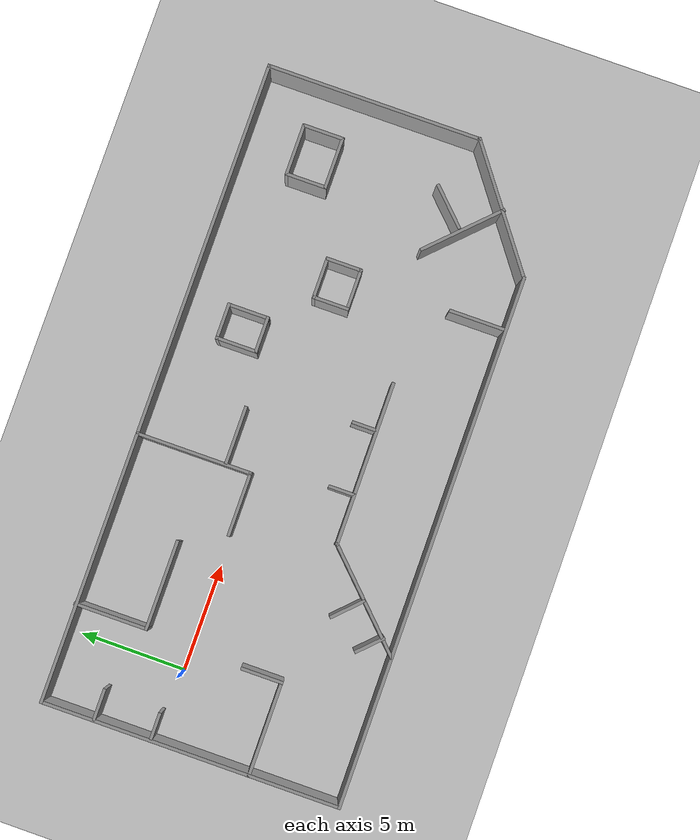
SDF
<sdf version="1.7">
 <world name="default">
  <model name="ground_plane">
   <static>1</static>
   <link name="link">
    <collision name="collision">
     <geometry><plane><normal>0 0 1</normal><size>100 100</size></plane></geometry>
     <surface>
      <contact><collide_bitmask>65535</collide_bitmask></contact>
      <friction><ode><mu>100</mu><mu2>50</mu2></ode></friction>
     </surface>
    </collision>
    <visual name="visual">
     <cast_shadows>0</cast_shadows>
     <geometry><plane><normal>0 0 1</normal><size>100 100</size></plane></geometry>
     <material>
      <script><uri>file://media/materials/scripts/gazebo.material</uri><name>Gazebo/Grey</name></script>
     </material>
    </visual>
   </link>
  </model>
  <light name="sun" type="directional">
   <pose>0 0 10 0 -0 0</pose>
   <diffuse>0.8 0.8 0.8 1</diffuse>
   <specular>0.2 0.2 0.2 1</specular>
   <attenuation>
    <range>1000</range>
    <constant>0.9</constant>
    <linear>0.01</linear>
    <quadratic>0.001</quadratic>
   </attenuation>
   <direction>-0.5 0.1 -0.9</direction>
   <spot><inner_angle>0</inner_angle><outer_angle>0</outer_angle><falloff>0</falloff></spot>
  </light>
  <spherical_coordinates>
   <surface_model>EARTH_WGS84</surface_model>
   <latitude_deg>47.3667</latitude_deg>
   <longitude_deg>8.55</longitude_deg>
   <elevation>500</elevation>
   <heading_deg>0</heading_deg>
  </spherical_coordinates>
  <physics type="ode">
   <ode>
    <solver>
     <type>quick</type>
     <iters>500</iters>
     <sor>1.3</sor>
     <use_dynamic_moi_rescaling>0</use_dynamic_moi_rescaling>
    </solver>
    <constraints>
     <cfm>0</cfm>
     <erp>0.2</erp>
     <contact_max_correcting_vel>100</contact_max_correcting_vel>
     <contact_surface_layer>0.001</contact_surface_layer>
    </constraints>
   </ode>
   <max_step_size>0.001</max_step_size>
   <real_time_factor>1</real_time_factor>
   <real_time_update_rate>1000</real_time_update_rate>
  </physics>
  <gravity>0 0 -9.8</gravity>
  <magnetic_field>6e-06 2.3e-05 -4.2e-05</magnetic_field>
  <atmosphere type="adiabatic"/>
  <scene><ambient>0.4 0.4 0.4 1</ambient><background>0.7 0.7 0.7 1</background><shadows>1</shadows></scene>
  <model name="environment2">
   <pose>11.9528 -1.57746 0 0 -0 0</pose>
   <link name="Wall_1">
    <collision name="Wall_1_Collision">
     <geometry><box><size>30.5 0.15 2.5</size></box></geometry>
     <pose>0 0 1.25 0 -0 0</pose>
    </collision>
    <visual name="Wall_1_Visual">
     <pose>0 0 1.25 0 -0 0</pose>
     <geometry><box><size>30.5 0.15 2.5</size></box></geometry>
     <material>
      <script><uri>file://media/materials/scripts/gazebo.material</uri><name>Gazebo/Grey</name></script>
      <ambient>1 1 1 1</ambient>
     </material>
     <meta><layer>0</layer></meta>
    </visual>
    <pose>-0.014934 7.01964 0 0 -0 0</pose>
   </link>
   <link name="Wall_10">
    <collision name="Wall_10_Collision">
     <geometry><box><size>14.1751 0.15 2.5</size></box></geometry>
     <pose>0 0 1.25 0 -0 0</pose>
    </collision>
    <visual name="Wall_10_Visual">
     <pose>0 0 1.25 0 -0 0</pose>
     <geometry><box><size>14.1751 0.15 2.5</size></box></geometry>
     <material>
      <script><uri>file://media/materials/scripts/gazebo.material</uri><name>Gazebo/Grey</name></script>
      <ambient>1 1 1 1</ambient>
     </material>
     <meta><layer>0</layer></meta>
    </visual>
    <pose>-15.1867 0.007115 0 0 -0 -1.57033</pose>
   </link>
   <link name="Wall_13">
    <collision name="Wall_13_Collision">
     <geometry><box><size>3.5 0.15 2.5</size></box></geometry>
     <pose>0 0 1.25 0 -0 0</pose>
    </collision>
    <visual name="Wall_13_Visual">
     <pose>0 0 1.25 0 -0 0</pose>
     <geometry><box><size>3.5 0.15 2.5</size></box></geometry>
     <material>
      <script><uri>file://media/materials/scripts/gazebo.material</uri><name>Gazebo/Grey</name></script>
      <ambient>1 1 1 1</ambient>
     </material>
     <meta><layer>0</layer></meta>
    </visual>
    <pose>-10.5995 5.38344 0 0 -0 -1.5708</pose>
   </link>
   <link name="Wall_14">
    <collision name="Wall_14_Collision">
     <geometry><box><size>4.25 0.15 2.5</size></box></geometry>
     <pose>0 0 1.25 0 -0 0</pose>
    </collision>
    <visual name="Wall_14_Visual">
     <pose>0 0 1.25 0 -0 0</pose>
     <geometry><box><size>4.25 0.15 2.5</size></box></geometry>
     <material>
      <script><uri>file://media/materials/scripts/gazebo.material</uri><name>Gazebo/Grey</name></script>
      <ambient>1 1 1 1</ambient>
     </material>
     <meta><layer>0</layer></meta>
    </visual>
    <pose>-8.5495 3.70844 0 0 -0 0</pose>
   </link>
   <link name="Wall_16">
    <collision name="Wall_16_Collision">
     <geometry><box><size>5.5 0.15 2.5</size></box></geometry>
     <pose>0 0 1.25 0 -0 0</pose>
    </collision>
    <visual name="Wall_16_Visual">
     <pose>0 0 1.25 0 -0 0</pose>
     <geometry><box><size>5.5 0.15 2.5</size></box></geometry>
     <material>
      <script><uri>file://media/materials/scripts/gazebo.material</uri><name>Gazebo/Grey</name></script>
      <ambient>1 1 1 1</ambient>
     </material>
     <meta><layer>0</layer></meta>
    </visual>
    <pose>-2.52368 4.32226 0 0 -0 -1.5708</pose>
   </link>
   <link name="Wall_17">
    <collision name="Wall_17_Collision">
     <geometry><box><size>3.06118 0.15 2.5</size></box></geometry>
     <pose>0 0 1.25 0 -0 0</pose>
    </collision>
    <visual name="Wall_17_Visual">
     <pose>0 0 1.25 0 -0 0</pose>
     <geometry><box><size>3.06118 0.15 2.5</size></box></geometry>
     <material>
      <script><uri>file://media/materials/scripts/gazebo.material</uri><name>Gazebo/Grey</name></script>
      <ambient>1 1 1 1</ambient>
     </material>
     <meta><layer>0</layer></meta>
    </visual>
    <pose>-3.97927 1.64726 0 0 -0 3.14159</pose>
   </link>
   <link name="Wall_2">
    <collision name="Wall_2_Collision">
     <geometry><box><size>10.25 0.15 2.5</size></box></geometry>
     <pose>0 0 1.25 0 -0 0</pose>
    </collision>
    <visual name="Wall_2_Visual">
     <pose>0 0 1.25 0 -0 0</pose>
     <geometry><box><size>10.25 0.15 2.5</size></box></geometry>
     <material>
      <script><uri>file://media/materials/scripts/gazebo.material</uri><name>Gazebo/Grey</name></script>
      <ambient>1 1 1 1</ambient>
     </material>
     <meta><layer>0</layer></meta>
    </visual>
    <pose>15.1601 1.96964 0 0 -0 -1.5708</pose>
   </link>
   <link name="Wall_20">
    <collision name="Wall_20_Collision">
     <geometry><box><size>4.5 0.15 2.5</size></box></geometry>
     <pose>0 0 1.25 0 -0 0</pose>
    </collision>
    <visual name="Wall_20_Visual">
     <pose>0 0 1.25 0 -0 0</pose>
     <geometry><box><size>4.5 0.15 2.5</size></box></geometry>
     <material>
      <script><uri>file://media/materials/scripts/gazebo.material</uri><name>Gazebo/Grey</name></script>
      <ambient>1 1 1 1</ambient>
     </material>
     <meta><layer>0</layer></meta>
    </visual>
    <pose>-13.013 -2.76102 0 0 -0 0</pose>
   </link>
   <link name="Wall_21">
    <collision name="Wall_21_Collision">
     <geometry><box><size>2 0.15 2.5</size></box></geometry>
     <pose>0 0 1.25 0 -0 0</pose>
    </collision>
    <visual name="Wall_21_Visual">
     <pose>0 0 1.25 0 -0 0</pose>
     <geometry><box><size>2 0.15 2.5</size></box></geometry>
     <material>
      <script><uri>file://media/materials/scripts/gazebo.material</uri><name>Gazebo/Grey</name></script>
      <ambient>1 1 1 1</ambient>
     </material>
     <meta><layer>0</layer></meta>
    </visual>
    <pose>-10.838 -1.83602 0 0 -0 1.5708</pose>
   </link>
   <link name="Wall_23">
    <collision name="Wall_23_Collision">
     <geometry><box><size>5.75 0.15 2.5</size></box></geometry>
     <pose>0 0 1.25 0 -0 0</pose>
    </collision>
    <visual name="Wall_23_Visual">
     <pose>0 0 1.25 0 -0 0</pose>
     <geometry><box><size>5.75 0.15 2.5</size></box></geometry>
     <material>
      <script><uri>file://media/materials/scripts/gazebo.material</uri><name>Gazebo/Grey</name></script>
      <ambient>1 1 1 1</ambient>
     </material>
     <meta><layer>0</layer></meta>
    </visual>
    <pose>-6.20298 -5.03317 0 0 -0 0.785398</pose>
   </link>
   <link name="Wall_25">
    <collision name="Wall_25_Collision">
     <geometry><box><size>7.75 0.15 2.5</size></box></geometry>
     <pose>0 0 1.25 0 -0 0</pose>
    </collision>
    <visual name="Wall_25_Visual">
     <pose>0 0 1.25 0 -0 0</pose>
     <geometry><box><size>7.75 0.15 2.5</size></box></geometry>
     <material>
      <script><uri>file://media/materials/scripts/gazebo.material</uri><name>Gazebo/Grey</name></script>
      <ambient>1 1 1 1</ambient>
     </material>
     <meta><layer>0</layer></meta>
    </visual>
    <pose>-0.423078 -3.05327 0 0 -0 0</pose>
   </link>
   <link name="Wall_27">
    <collision name="Wall_27_Collision">
     <geometry><box><size>2 0.15 2.5</size></box></geometry>
     <pose>0 0 1.25 0 -0 0</pose>
    </collision>
    <visual name="Wall_27_Visual">
     <pose>0 0 1.25 0 -0 0</pose>
     <geometry><box><size>2 0.15 2.5</size></box></geometry>
     <material>
      <script><uri>file://media/materials/scripts/gazebo.material</uri><name>Gazebo/Grey</name></script>
      <ambient>1 1 1 1</ambient>
     </material>
     <meta><layer>0</layer></meta>
    </visual>
    <pose>2.70725 4.17567 0 0 -0 -1.5708</pose>
   </link>
   <link name="Wall_28">
    <collision name="Wall_28_Collision">
     <geometry><box><size>1.75 0.15 2.5</size></box></geometry>
     <pose>0 0 1.25 0 -0 0</pose>
    </collision>
    <visual name="Wall_28_Visual">
     <pose>0 0 1.25 0 -0 0</pose>
     <geometry><box><size>1.75 0.15 2.5</size></box></geometry>
     <material>
      <script><uri>file://media/materials/scripts/gazebo.material</uri><name>Gazebo/Grey</name></script>
      <ambient>1 1 1 1</ambient>
     </material>
     <meta><layer>0</layer></meta>
    </visual>
    <pose>3.50725 3.25067 0 0 -0 0</pose>
   </link>
   <link name="Wall_29">
    <collision name="Wall_29_Collision">
     <geometry><box><size>2 0.15 2.5</size></box></geometry>
     <pose>0 0 1.25 0 -0 0</pose>
    </collision>
    <visual name="Wall_29_Visual">
     <pose>0 0 1.25 0 -0 0</pose>
     <geometry><box><size>2 0.15 2.5</size></box></geometry>
     <material>
      <script><uri>file://media/materials/scripts/gazebo.material</uri><name>Gazebo/Grey</name></script>
      <ambient>1 1 1 1</ambient>
     </material>
     <meta><layer>0</layer></meta>
    </visual>
    <pose>4.30724 4.17567 0 0 -0 1.5708</pose>
   </link>
   <link name="Wall_3">
    <collision name="Wall_3_Collision">
     <geometry><box><size>6.78786 0.15 2.5</size></box></geometry>
     <pose>0 0 1.25 0 -0 0</pose>
    </collision>
    <visual name="Wall_3_Visual">
     <pose>0 0 1.25 0 -0 0</pose>
     <geometry><box><size>6.78786 0.15 2.5</size></box></geometry>
     <material>
      <script><uri>file://media/materials/scripts/gazebo.material</uri><name>Gazebo/Grey</name></script>
      <ambient>1 1 1 1</ambient>
     </material>
     <meta><layer>0</layer></meta>
    </visual>
    <pose>12.4921 -5.05445 0 0 -0 -2.50458</pose>
   </link>
   <link name="Wall_30">
    <collision name="Wall_30_Collision">
     <geometry><box><size>1.75 0.15 2.5</size></box></geometry>
     <pose>0 0 1.25 0 -0 0</pose>
    </collision>
    <visual name="Wall_30_Visual">
     <pose>0 0 1.25 0 -0 0</pose>
     <geometry><box><size>1.75 0.15 2.5</size></box></geometry>
     <material>
      <script><uri>file://media/materials/scripts/gazebo.material</uri><name>Gazebo/Grey</name></script>
      <ambient>1 1 1 1</ambient>
     </material>
     <meta><layer>0</layer></meta>
    </visual>
    <pose>3.50725 5.10067 0 0 -0 3.14159</pose>
   </link>
   <link name="Wall_32">
    <collision name="Wall_32_Collision">
     <geometry><box><size>1.75 0.15 2.5</size></box></geometry>
     <pose>0 0 1.25 0 -0 0</pose>
    </collision>
    <visual name="Wall_32_Visual">
     <pose>0 0 1.25 0 -0 0</pose>
     <geometry><box><size>1.75 0.15 2.5</size></box></geometry>
     <material>
      <script><uri>file://media/materials/scripts/gazebo.material</uri><name>Gazebo/Grey</name></script>
      <ambient>1 1 1 1</ambient>
     </material>
     <meta><layer>0</layer></meta>
    </visual>
    <pose>5.88863 0.813381 0 0 -0 -1.5708</pose>
   </link>
   <link name="Wall_33">
    <collision name="Wall_33_Collision">
     <geometry><box><size>2 0.15 2.5</size></box></geometry>
     <pose>0 0 1.25 0 -0 0</pose>
    </collision>
    <visual name="Wall_33_Visual">
     <pose>0 0 1.25 0 -0 0</pose>
     <geometry><box><size>2 0.15 2.5</size></box></geometry>
     <material>
      <script><uri>file://media/materials/scripts/gazebo.material</uri><name>Gazebo/Grey</name></script>
      <ambient>1 1 1 1</ambient>
     </material>
     <meta><layer>0</layer></meta>
    </visual>
    <pose>6.81363 0.013381 0 0 -0 0</pose>
   </link>
   <link name="Wall_34">
    <collision name="Wall_34_Collision">
     <geometry><box><size>1.75 0.15 2.5</size></box></geometry>
     <pose>0 0 1.25 0 -0 0</pose>
    </collision>
    <visual name="Wall_34_Visual">
     <pose>0 0 1.25 0 -0 0</pose>
     <geometry><box><size>1.75 0.15 2.5</size></box></geometry>
     <material>
      <script><uri>file://media/materials/scripts/gazebo.material</uri><name>Gazebo/Grey</name></script>
      <ambient>1 1 1 1</ambient>
     </material>
     <meta><layer>0</layer></meta>
    </visual>
    <pose>7.73863 0.813381 0 0 -0 1.5708</pose>
   </link>
   <link name="Wall_35">
    <collision name="Wall_35_Collision">
     <geometry><box><size>2 0.15 2.5</size></box></geometry>
     <pose>0 0 1.25 0 -0 0</pose>
    </collision>
    <visual name="Wall_35_Visual">
     <pose>0 0 1.25 0 -0 0</pose>
     <geometry><box><size>2 0.15 2.5</size></box></geometry>
     <material>
      <script><uri>file://media/materials/scripts/gazebo.material</uri><name>Gazebo/Grey</name></script>
      <ambient>1 1 1 1</ambient>
     </material>
     <meta><layer>0</layer></meta>
    </visual>
    <pose>6.81363 1.61338 0 0 -0 3.14159</pose>
   </link>
   <link name="Wall_4">
    <collision name="Wall_4_Collision">
     <geometry><box><size>25.1806 0.15 2.5</size></box></geometry>
     <pose>0 0 1.25 0 -0 0</pose>
    </collision>
    <visual name="Wall_4_Visual">
     <pose>0 0 1.25 0 -0 0</pose>
     <geometry><box><size>25.1806 0.15 2.5</size></box></geometry>
     <material>
      <script><uri>file://media/materials/scripts/gazebo.material</uri><name>Gazebo/Grey</name></script>
      <ambient>1 1 1 1</ambient>
     </material>
     <meta><layer>0</layer></meta>
    </visual>
    <pose>-2.66812 -7.01698 0 0 -0 3.14067</pose>
   </link>
   <link name="Wall_59">
    <collision name="Wall_59_Collision">
     <geometry><box><size>2 0.15 2.5</size></box></geometry>
     <pose>0 0 1.25 0 -0 0</pose>
    </collision>
    <visual name="Wall_59_Visual">
     <pose>0 0 1.25 0 -0 0</pose>
     <geometry><box><size>2 0.15 2.5</size></box></geometry>
     <material>
      <script><uri>file://media/materials/scripts/gazebo.material</uri><name>Gazebo/Grey</name></script>
      <ambient>1 1 1 1</ambient>
     </material>
     <meta><layer>0</layer></meta>
    </visual>
    <pose>10.7619 3.70045 0 0 -0 -1.5708</pose>
   </link>
   <link name="Wall_60">
    <collision name="Wall_60_Collision">
     <geometry><box><size>2.5 0.15 2.5</size></box></geometry>
     <pose>0 0 1.25 0 -0 0</pose>
    </collision>
    <visual name="Wall_60_Visual">
     <pose>0 0 1.25 0 -0 0</pose>
     <geometry><box><size>2.5 0.15 2.5</size></box></geometry>
     <material>
      <script><uri>file://media/materials/scripts/gazebo.material</uri><name>Gazebo/Grey</name></script>
      <ambient>1 1 1 1</ambient>
     </material>
     <meta><layer>0</layer></meta>
    </visual>
    <pose>11.9369 2.77545 0 0 -0 0</pose>
   </link>
   <link name="Wall_61">
    <collision name="Wall_61_Collision">
     <geometry><box><size>2 0.15 2.5</size></box></geometry>
     <pose>0 0 1.25 0 -0 0</pose>
    </collision>
    <visual name="Wall_61_Visual">
     <pose>0 0 1.25 0 -0 0</pose>
     <geometry><box><size>2 0.15 2.5</size></box></geometry>
     <material>
      <script><uri>file://media/materials/scripts/gazebo.material</uri><name>Gazebo/Grey</name></script>
      <ambient>1 1 1 1</ambient>
     </material>
     <meta><layer>0</layer></meta>
    </visual>
    <pose>13.1119 3.70045 0 0 -0 1.5708</pose>
   </link>
   <link name="Wall_62">
    <collision name="Wall_62_Collision">
     <geometry><box><size>2.5 0.15 2.5</size></box></geometry>
     <pose>0 0 1.25 0 -0 0</pose>
    </collision>
    <visual name="Wall_62_Visual">
     <pose>0 0 1.25 0 -0 0</pose>
     <geometry><box><size>2.5 0.15 2.5</size></box></geometry>
     <material>
      <script><uri>file://media/materials/scripts/gazebo.material</uri><name>Gazebo/Grey</name></script>
      <ambient>1 1 1 1</ambient>
     </material>
     <meta><layer>0</layer></meta>
    </visual>
    <pose>11.9369 4.62545 0 0 -0 3.14159</pose>
   </link>
   <link name="Wall_64">
    <collision name="Wall_64_Collision">
     <geometry><box><size>4.25 0.15 2.5</size></box></geometry>
     <pose>0 0 1.25 0 -0 0</pose>
    </collision>
    <visual name="Wall_64_Visual">
     <pose>0 0 1.25 0 -0 0</pose>
     <geometry><box><size>4.25 0.15 2.5</size></box></geometry>
     <material>
      <script><uri>file://media/materials/scripts/gazebo.material</uri><name>Gazebo/Grey</name></script>
      <ambient>1 1 1 1</ambient>
     </material>
     <meta><layer>0</layer></meta>
    </visual>
    <pose>11.0009 -3.70468 0 0 -0 2.35619</pose>
   </link>
   <link name="Wall_66">
    <collision name="Wall_66_Collision">
     <geometry><box><size>2.25 0.15 2.5</size></box></geometry>
     <pose>0 0 1.25 0 -0 0</pose>
    </collision>
    <visual name="Wall_66_Visual">
     <pose>0 0 1.25 0 -0 0</pose>
     <geometry><box><size>2.25 0.15 2.5</size></box></geometry>
     <material>
      <script><uri>file://media/materials/scripts/gazebo.material</uri><name>Gazebo/Grey</name></script>
      <ambient>1 1 1 1</ambient>
     </material>
     <meta><layer>0</layer></meta>
    </visual>
    <pose>11.7858 -2.75838 0 0 -0 0.785398</pose>
   </link>
   <link name="Wall_69">
    <collision name="Wall_69_Collision">
     <geometry><box><size>2.75 0.15 2.5</size></box></geometry>
     <pose>0 0 1.25 0 -0 0</pose>
    </collision>
    <visual name="Wall_69_Visual">
     <pose>0 0 1.25 0 -0 0</pose>
     <geometry><box><size>2.75 0.15 2.5</size></box></geometry>
     <material>
      <script><uri>file://media/materials/scripts/gazebo.material</uri><name>Gazebo/Grey</name></script>
      <ambient>1 1 1 1</ambient>
     </material>
     <meta><layer>0</layer></meta>
    </visual>
    <pose>7.34954 -5.71872 0 0 -0 1.5708</pose>
   </link>
   <link name="Wall_71">
    <collision name="Wall_71_Collision">
     <geometry><box><size>2.75 0.15 2.5</size></box></geometry>
     <pose>0 0 1.25 0 -0 0</pose>
    </collision>
    <visual name="Wall_71_Visual">
     <pose>0 0 1.25 0 -0 0</pose>
     <geometry><box><size>2.75 0.15 2.5</size></box></geometry>
     <material>
      <script><uri>file://media/materials/scripts/gazebo.material</uri><name>Gazebo/Grey</name></script>
      <ambient>1 1 1 1</ambient>
     </material>
     <meta><layer>0</layer></meta>
    </visual>
    <pose>-1.13015 2.83133 0 0 -0 0</pose>
   </link>
   <link name="Wall_73">
    <collision name="Wall_73_Collision">
     <geometry><box><size>1.25 0.15 2.5</size></box></geometry>
     <pose>0 0 1.25 0 -0 0</pose>
    </collision>
    <visual name="Wall_73_Visual">
     <pose>0 0 1.25 0 -0 0</pose>
     <geometry><box><size>1.25 0.15 2.5</size></box></geometry>
     <material>
      <script><uri>file://media/materials/scripts/gazebo.material</uri><name>Gazebo/Grey</name></script>
      <ambient>1 1 1 1</ambient>
     </material>
     <meta><layer>0</layer></meta>
    </visual>
    <pose>-1.90247 -2.45834 0 0 -0 1.5708</pose>
   </link>
   <link name="Wall_75">
    <collision name="Wall_75_Collision">
     <geometry><box><size>1.25 0.15 2.5</size></box></geometry>
     <pose>0 0 1.25 0 -0 0</pose>
    </collision>
    <visual name="Wall_75_Visual">
     <pose>0 0 1.25 0 -0 0</pose>
     <geometry><box><size>1.25 0.15 2.5</size></box></geometry>
     <material>
      <script><uri>file://media/materials/scripts/gazebo.material</uri><name>Gazebo/Grey</name></script>
      <ambient>1 1 1 1</ambient>
     </material>
     <meta><layer>0</layer></meta>
    </visual>
    <pose>1.15808 -2.49352 0 0 -0 1.5708</pose>
   </link>
   <link name="Wall_77">
    <collision name="Wall_77_Collision">
     <geometry><box><size>1.75 0.15 2.5</size></box></geometry>
     <pose>0 0 1.25 0 -0 0</pose>
    </collision>
    <visual name="Wall_77_Visual">
     <pose>0 0 1.25 0 -0 0</pose>
     <geometry><box><size>1.75 0.15 2.5</size></box></geometry>
     <material>
      <script><uri>file://media/materials/scripts/gazebo.material</uri><name>Gazebo/Grey</name></script>
      <ambient>1 1 1 1</ambient>
     </material>
     <meta><layer>0</layer></meta>
    </visual>
    <pose>-6.79514 -4.44785 0 0 -0 2.35619</pose>
   </link>
   <link name="Wall_79">
    <collision name="Wall_79_Collision">
     <geometry><box><size>1.5 0.15 2.5</size></box></geometry>
     <pose>0 0 1.25 0 -0 0</pose>
    </collision>
    <visual name="Wall_79_Visual">
     <pose>0 0 1.25 0 -0 0</pose>
     <geometry><box><size>1.5 0.15 2.5</size></box></geometry>
     <material>
      <script><uri>file://media/materials/scripts/gazebo.material</uri><name>Gazebo/Grey</name></script>
      <ambient>1 1 1 1</ambient>
     </material>
     <meta><layer>0</layer></meta>
    </visual>
    <pose>-7.97319 -5.90821 0 0 -0 2.35619</pose>
   </link>
   <link name="Wall_81">
    <collision name="Wall_81_Collision">
     <geometry><box><size>1.25 0.15 2.5</size></box></geometry>
     <pose>0 0 1.25 0 -0 0</pose>
    </collision>
    <visual name="Wall_81_Visual">
     <pose>0 0 1.25 0 -0 0</pose>
     <geometry><box><size>1.25 0.15 2.5</size></box></geometry>
     <material>
      <script><uri>file://media/materials/scripts/gazebo.material</uri><name>Gazebo/Grey</name></script>
      <ambient>1 1 1 1</ambient>
     </material>
     <meta><layer>0</layer></meta>
    </visual>
    <pose>-14.5129 1.88016 0 0 -0 0</pose>
   </link>
   <link name="Wall_83">
    <collision name="Wall_83_Collision">
     <geometry><box><size>1.5 0.15 2.5</size></box></geometry>
     <pose>0 0 1.25 0 -0 0</pose>
    </collision>
    <visual name="Wall_83_Visual">
     <pose>0 0 1.25 0 -0 0</pose>
     <geometry><box><size>1.5 0.15 2.5</size></box></geometry>
     <material>
      <script><uri>file://media/materials/scripts/gazebo.material</uri><name>Gazebo/Grey</name></script>
      <ambient>1 1 1 1</ambient>
     </material>
     <meta><layer>0</layer></meta>
    </visual>
    <pose>-14.4582 4.55375 0 0 -0 0</pose>
   </link>
   <static>1</static>
  </model>
 </world>
</sdf>
